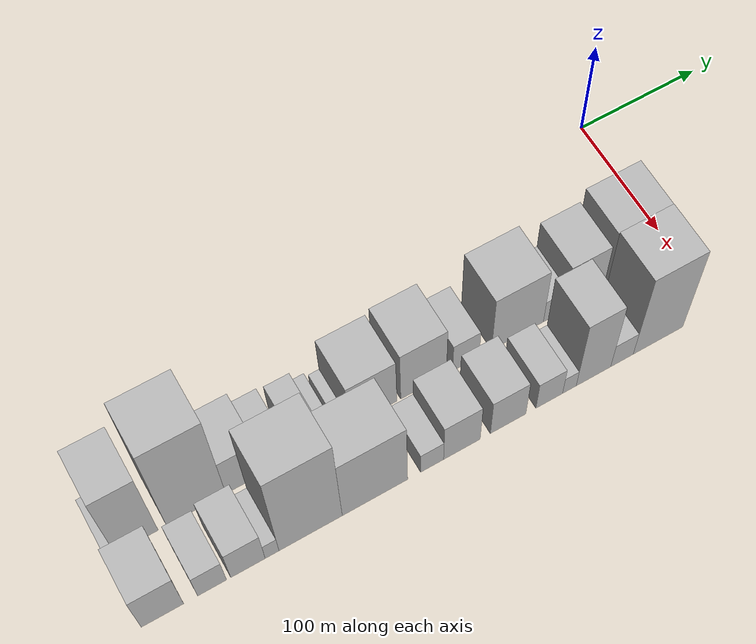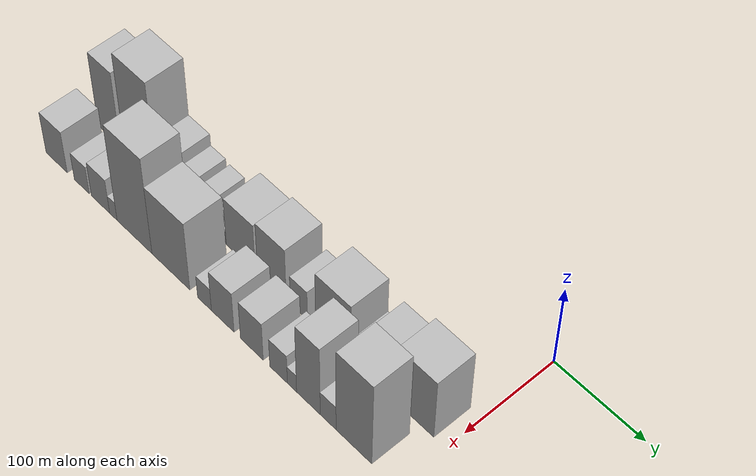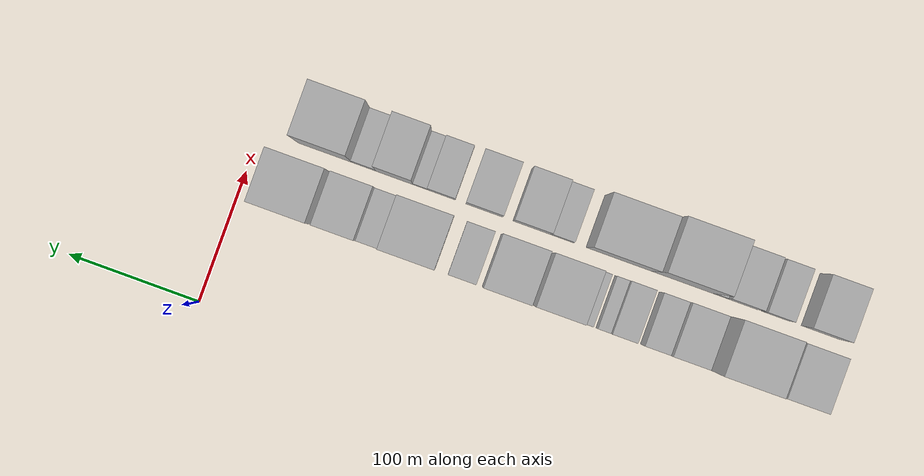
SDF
<sdf version="1.6">
 <world name="default">
  <model name="building_1">
   <static>1</static>
   <pose>100.0000 -440.8172 0 0.000000 0.000000 0.000000</pose>
   <link name="link">
    <pose>0 0 7.50 0 0 0</pose>
    <collision name="collision"><geometry><box><size>40.0000 6.3657 15.0000</size></box></geometry></collision>
    <visual name="visual">
     <cast_shadows>0</cast_shadows>
     <geometry><box><size>40.0000 6.3657 15.0000</size></box></geometry>
     <material>
      <script>
       <uri>model://HANNAS_wall/materials/scripts</uri>
       <uri>model://HANNAS_wall/materials/textures</uri>
       <name>vrc/HANNAS_wall</name>
      </script>
     </material>
    </visual>
   </link>
  </model>
  <model name="building_2">
   <static>1</static>
   <pose>100.0000 -422.1031 0 0.000000 0.000000 0.000000</pose>
   <link name="link">
    <pose>0 0 48.00 0 0 0</pose>
    <collision name="collision"><geometry><box><size>40.0000 31.0623 96.0000</size></box></geometry></collision>
    <visual name="visual">
     <cast_shadows>0</cast_shadows>
     <geometry><box><size>40.0000 31.0623 96.0000</size></box></geometry>
     <material>
      <script>
       <uri>model://HANNAS_wall/materials/scripts</uri>
       <uri>model://HANNAS_wall/materials/textures</uri>
       <name>vrc/HANNAS_wall</name>
      </script>
     </material>
    </visual>
   </link>
  </model>
  <model name="building_3">
   <static>1</static>
   <pose>100.0000 -378.8584 0 0.000000 0.000000 0.000000</pose>
   <link name="link">
    <pose>0 0 63.00 0 0 0</pose>
    <collision name="collision"><geometry><box><size>40.0000 43.4272 126.0000</size></box></geometry></collision>
    <visual name="visual">
     <cast_shadows>0</cast_shadows>
     <geometry><box><size>40.0000 43.4272 126.0000</size></box></geometry>
     <material>
      <script>
       <uri>model://HANNAS_wall/materials/scripts</uri>
       <uri>model://HANNAS_wall/materials/textures</uri>
       <name>vrc/HANNAS_wall</name>
      </script>
     </material>
    </visual>
   </link>
  </model>
  <model name="building_4">
   <static>1</static>
   <pose>100.0000 -343.1424 0 0.000000 0.000000 0.000000</pose>
   <link name="link">
    <pose>0 0 27.00 0 0 0</pose>
    <collision name="collision"><geometry><box><size>40.0000 28.0048 54.0000</size></box></geometry></collision>
    <visual name="visual">
     <cast_shadows>0</cast_shadows>
     <geometry><box><size>40.0000 28.0048 54.0000</size></box></geometry>
     <material>
      <script>
       <uri>model://HANNAS_wall/materials/scripts</uri>
       <uri>model://HANNAS_wall/materials/textures</uri>
       <name>vrc/HANNAS_wall</name>
      </script>
     </material>
    </visual>
   </link>
  </model>
  <model name="building_5">
   <static>1</static>
   <pose>100.0000 -319.3504 0 0.000000 0.000000 0.000000</pose>
   <link name="link">
    <pose>0 0 19.50 0 0 0</pose>
    <collision name="collision"><geometry><box><size>40.0000 19.5792 39.0000</size></box></geometry></collision>
    <visual name="visual">
     <cast_shadows>0</cast_shadows>
     <geometry><box><size>40.0000 19.5792 39.0000</size></box></geometry>
     <material>
      <script>
       <uri>model://HANNAS_wall/materials/scripts</uri>
       <uri>model://HANNAS_wall/materials/textures</uri>
       <name>vrc/HANNAS_wall</name>
      </script>
     </material>
    </visual>
   </link>
  </model>
  <model name="building_6">
   <static>1</static>
   <pose>100.0000 -294.9732 0 0.000000 0.000000 0.000000</pose>
   <link name="link">
    <pose>0 0 18.00 0 0 0</pose>
    <collision name="collision"><geometry><box><size>40.0000 19.1752 36.0000</size></box></geometry></collision>
    <visual name="visual">
     <cast_shadows>0</cast_shadows>
     <geometry><box><size>40.0000 19.1752 36.0000</size></box></geometry>
     <material>
      <script>
       <uri>model://HANNAS_wall/materials/scripts</uri>
       <uri>model://HANNAS_wall/materials/textures</uri>
       <name>vrc/HANNAS_wall</name>
      </script>
     </material>
    </visual>
   </link>
  </model>
  <model name="building_7">
   <static>1</static>
   <pose>100.0000 -280.4078 0 0.000000 0.000000 0.000000</pose>
   <link name="link">
    <pose>0 0 12.00 0 0 0</pose>
    <collision name="collision"><geometry><box><size>40.0000 9.9555 24.0000</size></box></geometry></collision>
    <visual name="visual">
     <cast_shadows>0</cast_shadows>
     <geometry><box><size>40.0000 9.9555 24.0000</size></box></geometry>
     <material>
      <script>
       <uri>model://HANNAS_wall/materials/scripts</uri>
       <uri>model://HANNAS_wall/materials/textures</uri>
       <name>vrc/HANNAS_wall</name>
      </script>
     </material>
    </visual>
   </link>
  </model>
  <model name="building_8">
   <static>1</static>
   <pose>100.0000 -268.2768 0 0.000000 0.000000 0.000000</pose>
   <link name="link">
    <pose>0 0 9.00 0 0 0</pose>
    <collision name="collision"><geometry><box><size>40.0000 8.3066 18.0000</size></box></geometry></collision>
    <visual name="visual">
     <cast_shadows>0</cast_shadows>
     <geometry><box><size>40.0000 8.3066 18.0000</size></box></geometry>
     <material>
      <script>
       <uri>model://HANNAS_wall/materials/scripts</uri>
       <uri>model://HANNAS_wall/materials/textures</uri>
       <name>vrc/HANNAS_wall</name>
      </script>
     </material>
    </visual>
   </link>
  </model>
  <model name="building_9">
   <static>1</static>
   <pose>100.0000 -245.6055 0 0.000000 0.000000 0.000000</pose>
   <link name="link">
    <pose>0 0 31.50 0 0 0</pose>
    <collision name="collision"><geometry><box><size>40.0000 37.0360 63.0000</size></box></geometry></collision>
    <visual name="visual">
     <cast_shadows>0</cast_shadows>
     <geometry><box><size>40.0000 37.0360 63.0000</size></box></geometry>
     <material>
      <script>
       <uri>model://HANNAS_wall/materials/scripts</uri>
       <uri>model://HANNAS_wall/materials/textures</uri>
       <name>vrc/HANNAS_wall</name>
      </script>
     </material>
    </visual>
   </link>
  </model>
  <model name="building_10">
   <static>1</static>
   <pose>100.0000 -206.1248 0 0.000000 0.000000 0.000000</pose>
   <link name="link">
    <pose>0 0 34.50 0 0 0</pose>
    <collision name="collision"><geometry><box><size>40.0000 35.9254 69.0000</size></box></geometry></collision>
    <visual name="visual">
     <cast_shadows>0</cast_shadows>
     <geometry><box><size>40.0000 35.9254 69.0000</size></box></geometry>
     <material>
      <script>
       <uri>model://HANNAS_wall/materials/scripts</uri>
       <uri>model://HANNAS_wall/materials/textures</uri>
       <name>vrc/HANNAS_wall</name>
      </script>
     </material>
    </visual>
   </link>
  </model>
  <model name="building_11">
   <static>1</static>
   <pose>100.0000 -172.5759 0 0.000000 0.000000 0.000000</pose>
   <link name="link">
    <pose>0 0 19.50 0 0 0</pose>
    <collision name="collision"><geometry><box><size>40.0000 21.1724 39.0000</size></box></geometry></collision>
    <visual name="visual">
     <cast_shadows>0</cast_shadows>
     <geometry><box><size>40.0000 21.1724 39.0000</size></box></geometry>
     <material>
      <script>
       <uri>model://HANNAS_wall/materials/scripts</uri>
       <uri>model://HANNAS_wall/materials/textures</uri>
       <name>vrc/HANNAS_wall</name>
      </script>
     </material>
    </visual>
   </link>
  </model>
  <model name="building_12">
   <static>1</static>
   <pose>100.0000 -130.8873 0 0.000000 0.000000 0.000000</pose>
   <link name="link">
    <pose>0 0 37.50 0 0 0</pose>
    <collision name="collision"><geometry><box><size>40.0000 42.2047 75.0000</size></box></geometry></collision>
    <visual name="visual">
     <cast_shadows>0</cast_shadows>
     <geometry><box><size>40.0000 42.2047 75.0000</size></box></geometry>
     <material>
      <script>
       <uri>model://HANNAS_wall/materials/scripts</uri>
       <uri>model://HANNAS_wall/materials/textures</uri>
       <name>vrc/HANNAS_wall</name>
      </script>
     </material>
    </visual>
   </link>
  </model>
  <model name="building_13">
   <static>1</static>
   <pose>100.0000 -100.9438 0 0.000000 0.000000 0.000000</pose>
   <link name="link">
    <pose>0 0 15.00 0 0 0</pose>
    <collision name="collision"><geometry><box><size>40.0000 17.6824 30.0000</size></box></geometry></collision>
    <visual name="visual">
     <cast_shadows>0</cast_shadows>
     <geometry><box><size>40.0000 17.6824 30.0000</size></box></geometry>
     <material>
      <script>
       <uri>model://HANNAS_wall/materials/scripts</uri>
       <uri>model://HANNAS_wall/materials/textures</uri>
       <name>vrc/HANNAS_wall</name>
      </script>
     </material>
    </visual>
   </link>
  </model>
  <model name="building_14">
   <static>1</static>
   <pose>100.0000 -76.2598 0 0.000000 0.000000 0.000000</pose>
   <link name="link">
    <pose>0 0 31.50 0 0 0</pose>
    <collision name="collision"><geometry><box><size>40.0000 31.6857 63.0000</size></box></geometry></collision>
    <visual name="visual">
     <cast_shadows>0</cast_shadows>
     <geometry><box><size>40.0000 31.6857 63.0000</size></box></geometry>
     <material>
      <script>
       <uri>model://HANNAS_wall/materials/scripts</uri>
       <uri>model://HANNAS_wall/materials/textures</uri>
       <name>vrc/HANNAS_wall</name>
      </script>
     </material>
    </visual>
   </link>
  </model>
  <model name="building_15">
   <static>1</static>
   <pose>100.0000 -35.4703 0 0.000000 0.000000 0.000000</pose>
   <link name="link">
    <pose>0 0 39.00 0 0 0</pose>
    <collision name="collision"><geometry><box><size>40.0000 43.8933 78.0000</size></box></geometry></collision>
    <visual name="visual">
     <cast_shadows>0</cast_shadows>
     <geometry><box><size>40.0000 43.8933 78.0000</size></box></geometry>
     <material>
      <script>
       <uri>model://HANNAS_wall/materials/scripts</uri>
       <uri>model://HANNAS_wall/materials/textures</uri>
       <name>vrc/HANNAS_wall</name>
      </script>
     </material>
    </visual>
   </link>
  </model>
  <model name="building_29">
   <static>1</static>
   <pose>152.0000 -429.0302 0 0.000000 0.000000 0.000000</pose>
   <link name="link">
    <pose>0 0 27.00 0 0 0</pose>
    <collision name="collision"><geometry><box><size>40.0000 29.9396 54.0000</size></box></geometry></collision>
    <visual name="visual">
     <cast_shadows>0</cast_shadows>
     <geometry><box><size>40.0000 29.9396 54.0000</size></box></geometry>
     <material>
      <script>
       <uri>model://HANNAS_wall/materials/scripts</uri>
       <uri>model://HANNAS_wall/materials/textures</uri>
       <name>vrc/HANNAS_wall</name>
      </script>
     </material>
    </visual>
   </link>
  </model>
  <model name="building_30">
   <static>1</static>
   <pose>152.0000 -393.6898 0 0.000000 0.000000 0.000000</pose>
   <link name="link">
    <pose>0 0 18.00 0 0 0</pose>
    <collision name="collision"><geometry><box><size>40.0000 20.7413 36.0000</size></box></geometry></collision>
    <visual name="visual">
     <cast_shadows>0</cast_shadows>
     <geometry><box><size>40.0000 20.7413 36.0000</size></box></geometry>
     <material>
      <script>
       <uri>model://HANNAS_wall/materials/scripts</uri>
       <uri>model://HANNAS_wall/materials/textures</uri>
       <name>vrc/HANNAS_wall</name>
      </script>
     </material>
    </visual>
   </link>
  </model>
  <model name="building_31">
   <static>1</static>
   <pose>152.0000 -367.8227 0 0.000000 0.000000 0.000000</pose>
   <link name="link">
    <pose>0 0 22.50 0 0 0</pose>
    <collision name="collision"><geometry><box><size>40.0000 24.9930 45.0000</size></box></geometry></collision>
    <visual name="visual">
     <cast_shadows>0</cast_shadows>
     <geometry><box><size>40.0000 24.9930 45.0000</size></box></geometry>
     <material>
      <script>
       <uri>model://HANNAS_wall/materials/scripts</uri>
       <uri>model://HANNAS_wall/materials/textures</uri>
       <name>vrc/HANNAS_wall</name>
      </script>
     </material>
    </visual>
   </link>
  </model>
  <model name="building_32">
   <static>1</static>
   <pose>152.0000 -350.2837 0 0.000000 0.000000 0.000000</pose>
   <link name="link">
    <pose>0 0 12.00 0 0 0</pose>
    <collision name="collision"><geometry><box><size>40.0000 10.0849 24.0000</size></box></geometry></collision>
    <visual name="visual">
     <cast_shadows>0</cast_shadows>
     <geometry><box><size>40.0000 10.0849 24.0000</size></box></geometry>
     <material>
      <script>
       <uri>model://HANNAS_wall/materials/scripts</uri>
       <uri>model://HANNAS_wall/materials/textures</uri>
       <name>vrc/HANNAS_wall</name>
      </script>
     </material>
    </visual>
   </link>
  </model>
  <model name="building_33">
   <static>1</static>
   <pose>152.0000 -321.8135 0 0.000000 0.000000 0.000000</pose>
   <link name="link">
    <pose>0 0 63.00 0 0 0</pose>
    <collision name="collision"><geometry><box><size>40.0000 46.8557 126.0000</size></box></geometry></collision>
    <visual name="visual">
     <cast_shadows>0</cast_shadows>
     <geometry><box><size>40.0000 46.8557 126.0000</size></box></geometry>
     <material>
      <script>
       <uri>model://HANNAS_wall/materials/scripts</uri>
       <uri>model://HANNAS_wall/materials/textures</uri>
       <name>vrc/HANNAS_wall</name>
      </script>
     </material>
    </visual>
   </link>
  </model>
  <model name="building_34">
   <static>1</static>
   <pose>152.0000 -273.6697 0 0.000000 0.000000 0.000000</pose>
   <link name="link">
    <pose>0 0 45.00 0 0 0</pose>
    <collision name="collision"><geometry><box><size>40.0000 49.4318 90.0000</size></box></geometry></collision>
    <visual name="visual">
     <cast_shadows>0</cast_shadows>
     <geometry><box><size>40.0000 49.4318 90.0000</size></box></geometry>
     <material>
      <script>
       <uri>model://HANNAS_wall/materials/scripts</uri>
       <uri>model://HANNAS_wall/materials/textures</uri>
       <name>vrc/HANNAS_wall</name>
      </script>
     </material>
    </visual>
   </link>
  </model>
  <model name="building_35">
   <static>1</static>
   <pose>152.0000 -230.1338 0 0.000000 0.000000 0.000000</pose>
   <link name="link">
    <pose>0 0 15.00 0 0 0</pose>
    <collision name="collision"><geometry><box><size>40.0000 17.6401 30.0000</size></box></geometry></collision>
    <visual name="visual">
     <cast_shadows>0</cast_shadows>
     <geometry><box><size>40.0000 17.6401 30.0000</size></box></geometry>
     <material>
      <script>
       <uri>model://HANNAS_wall/materials/scripts</uri>
       <uri>model://HANNAS_wall/materials/textures</uri>
       <name>vrc/HANNAS_wall</name>
      </script>
     </material>
    </visual>
   </link>
  </model>
  <model name="building_36">
   <static>1</static>
   <pose>152.0000 -207.0645 0 0.000000 0.000000 0.000000</pose>
   <link name="link">
    <pose>0 0 27.00 0 0 0</pose>
    <collision name="collision"><geometry><box><size>40.0000 28.4986 54.0000</size></box></geometry></collision>
    <visual name="visual">
     <cast_shadows>0</cast_shadows>
     <geometry><box><size>40.0000 28.4986 54.0000</size></box></geometry>
     <material>
      <script>
       <uri>model://HANNAS_wall/materials/scripts</uri>
       <uri>model://HANNAS_wall/materials/textures</uri>
       <name>vrc/HANNAS_wall</name>
      </script>
     </material>
    </visual>
   </link>
  </model>
  <model name="building_37">
   <static>1</static>
   <pose>152.0000 -170.7764 0 0.000000 0.000000 0.000000</pose>
   <link name="link">
    <pose>0 0 25.50 0 0 0</pose>
    <collision name="collision"><geometry><box><size>40.0000 28.0775 51.0000</size></box></geometry></collision>
    <visual name="visual">
     <cast_shadows>0</cast_shadows>
     <geometry><box><size>40.0000 28.0775 51.0000</size></box></geometry>
     <material>
      <script>
       <uri>model://HANNAS_wall/materials/scripts</uri>
       <uri>model://HANNAS_wall/materials/textures</uri>
       <name>vrc/HANNAS_wall</name>
      </script>
     </material>
    </visual>
   </link>
  </model>
  <model name="building_38">
   <static>1</static>
   <pose>152.0000 -138.0554 0 0.000000 0.000000 0.000000</pose>
   <link name="link">
    <pose>0 0 19.50 0 0 0</pose>
    <collision name="collision"><geometry><box><size>40.0000 21.3645 39.0000</size></box></geometry></collision>
    <visual name="visual">
     <cast_shadows>0</cast_shadows>
     <geometry><box><size>40.0000 21.3645 39.0000</size></box></geometry>
     <material>
      <script>
       <uri>model://HANNAS_wall/materials/scripts</uri>
       <uri>model://HANNAS_wall/materials/textures</uri>
       <name>vrc/HANNAS_wall</name>
      </script>
     </material>
    </visual>
   </link>
  </model>
  <model name="building_39">
   <static>1</static>
   <pose>152.0000 -121.8626 0 0.000000 0.000000 0.000000</pose>
   <link name="link">
    <pose>0 0 12.00 0 0 0</pose>
    <collision name="collision"><geometry><box><size>40.0000 11.0212 24.0000</size></box></geometry></collision>
    <visual name="visual">
     <cast_shadows>0</cast_shadows>
     <geometry><box><size>40.0000 11.0212 24.0000</size></box></geometry>
     <material>
      <script>
       <uri>model://HANNAS_wall/materials/scripts</uri>
       <uri>model://HANNAS_wall/materials/textures</uri>
       <name>vrc/HANNAS_wall</name>
      </script>
     </material>
    </visual>
   </link>
  </model>
  <model name="building_40">
   <static>1</static>
   <pose>152.0000 -102.2980 0 0.000000 0.000000 0.000000</pose>
   <link name="link">
    <pose>0 0 46.50 0 0 0</pose>
    <collision name="collision"><geometry><box><size>40.0000 28.1080 93.0000</size></box></geometry></collision>
    <visual name="visual">
     <cast_shadows>0</cast_shadows>
     <geometry><box><size>40.0000 28.1080 93.0000</size></box></geometry>
     <material>
      <script>
       <uri>model://HANNAS_wall/materials/scripts</uri>
       <uri>model://HANNAS_wall/materials/textures</uri>
       <name>vrc/HANNAS_wall</name>
      </script>
     </material>
    </visual>
   </link>
  </model>
  <model name="building_41">
   <static>1</static>
   <pose>152.0000 -78.9847 0 0.000000 0.000000 0.000000</pose>
   <link name="link">
    <pose>0 0 16.50 0 0 0</pose>
    <collision name="collision"><geometry><box><size>40.0000 18.5187 33.0000</size></box></geometry></collision>
    <visual name="visual">
     <cast_shadows>0</cast_shadows>
     <geometry><box><size>40.0000 18.5187 33.0000</size></box></geometry>
     <material>
      <script>
       <uri>model://HANNAS_wall/materials/scripts</uri>
       <uri>model://HANNAS_wall/materials/textures</uri>
       <name>vrc/HANNAS_wall</name>
      </script>
     </material>
    </visual>
   </link>
  </model>
  <model name="building_42">
   <static>1</static>
   <pose>152.0000 -49.0863 0 0.000000 0.000000 0.000000</pose>
   <link name="link">
    <pose>0 0 55.50 0 0 0</pose>
    <collision name="collision"><geometry><box><size>40.0000 41.2781 111.0000</size></box></geometry></collision>
    <visual name="visual">
     <cast_shadows>0</cast_shadows>
     <geometry><box><size>40.0000 41.2781 111.0000</size></box></geometry>
     <material>
      <script>
       <uri>model://HANNAS_wall/materials/scripts</uri>
       <uri>model://HANNAS_wall/materials/textures</uri>
       <name>vrc/HANNAS_wall</name>
      </script>
     </material>
    </visual>
   </link>
  </model>
 </world>
</sdf>
